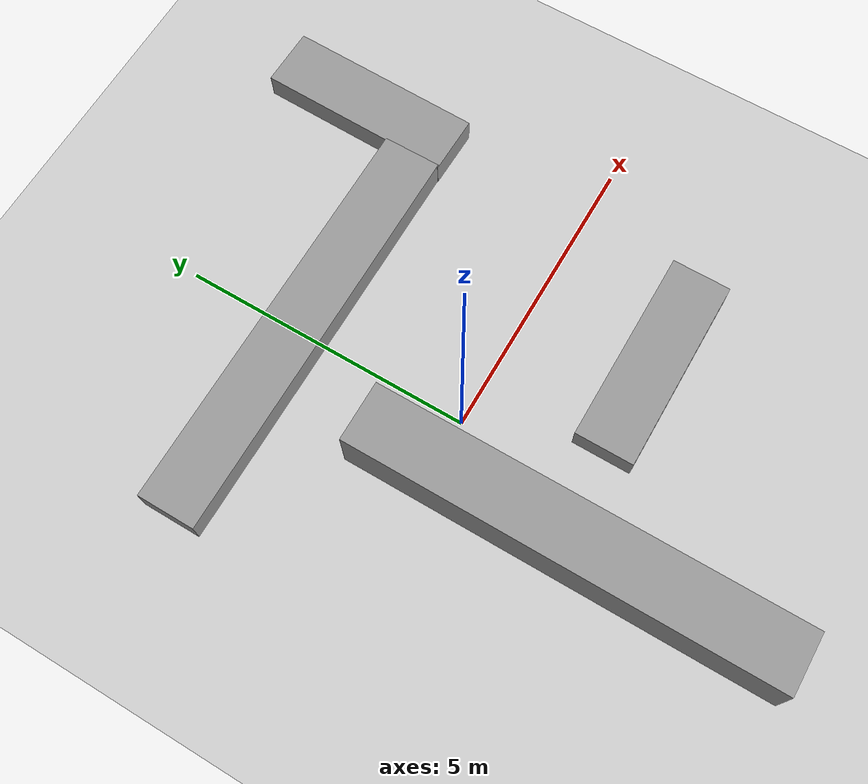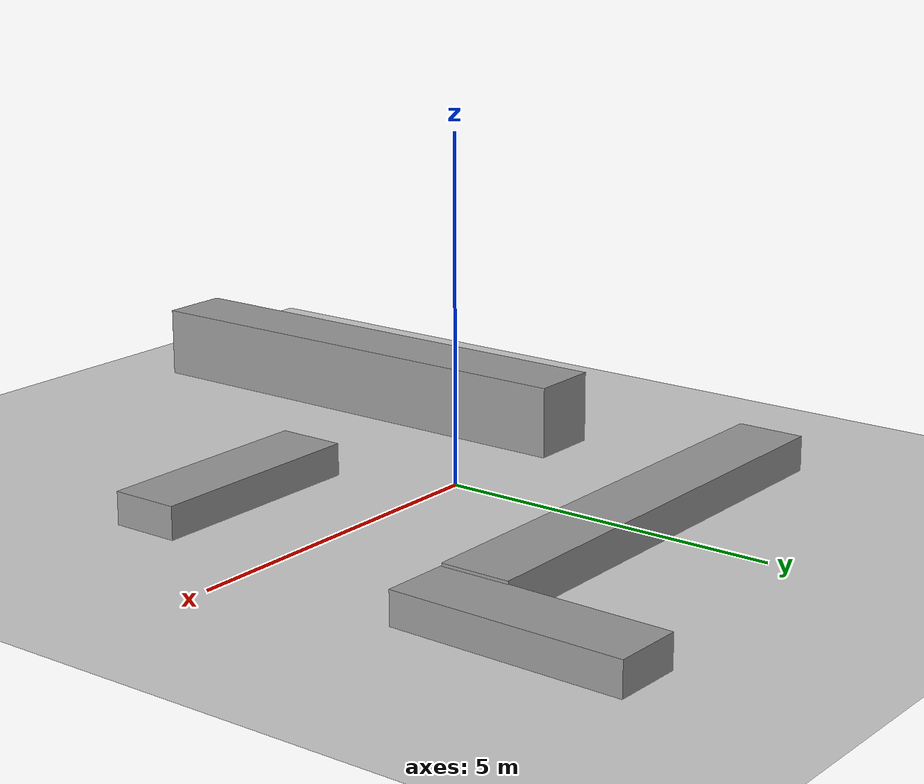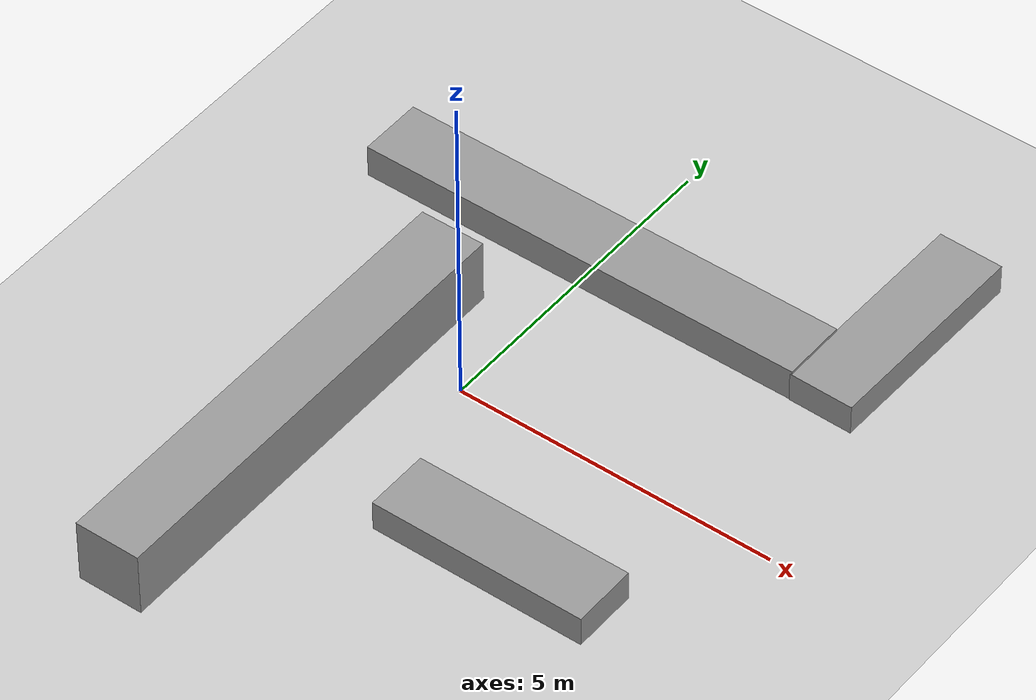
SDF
<sdf version="1.4">
 <world name="default">
  <model name="ground_plane">
   <static>1</static>
   <link name="link">
    <collision name="collision">
     <geometry>
      <plane><normal>0.000000 0.000000 1.000000</normal><size>100.000000 100.000000</size></plane>
     </geometry>
     <surface><friction><ode><mu>100.000000</mu><mu2>50.000000</mu2></ode></friction></surface>
    </collision>
    <visual name="visual">
     <cast_shadows>0</cast_shadows>
     <geometry>
      <plane><normal>0.000000 0.000000 1.000000</normal><size>100.000000 100.000000</size></plane>
     </geometry>
     <material>
      <script><uri>file://media/materials/scripts/gazebo.material</uri><name>Gazebo/Grey</name></script>
     </material>
    </visual>
    <velocity_decay><linear>0.000000</linear><angular>0.000000</angular></velocity_decay>
   </link>
  </model>
  <include><uri>model://sun</uri></include>
  <include><uri>model://obstacles</uri><pose>0 3 0 0 0 0</pose></include>
 </world>
</sdf>

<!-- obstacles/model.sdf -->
<sdf version='1.6'>
  <model name='obstacles'>
    <link name='link'>
      <inertial>
        <mass>7.0538</mass>
        <inertia>
          <ixx>1.17563</ixx>
          <ixy>0</ixy>
          <ixz>0</ixz>
          <iyy>29.8353</iyy>
          <iyz>0</iyz>
          <izz>29.8353</izz>
        </inertia>
        <pose frame=''>0 0 0 0 -0 0</pose>
      </inertial>
      <self_collide>0</self_collide>
      <enable_wind>0</enable_wind>
      <kinematic>0</kinematic>
      <pose frame=''>0 0 0 0 -0 0</pose>
      <gravity>1</gravity>
      <visual name='visual'>
        <geometry>
          <box>
            <size>7.05381 1 1</size>
          </box>
        </geometry>
        <material>
          <script>
            <name>Gazebo/Grey</name>
            <uri>file://media/materials/scripts/gazebo.material</uri>
          </script>
          <shader type='pixel'>
            <normal_map>__default__</normal_map>
          </shader>
        </material>
        <pose frame=''>-0 0 0 0 -0 0</pose>
        <transparency>0</transparency>
        <cast_shadows>1</cast_shadows>
      </visual>
      <collision name='collision'>
        <laser_retro>0</laser_retro>
        <max_contacts>10</max_contacts>
        <pose frame=''>0 0 0 0 -0 0</pose>
        <geometry>
          <box>
            <size>7.05381 1 1</size>
          </box>
        </geometry>
        <surface>
          <friction>
            <ode>
              <mu>1</mu>
              <mu2>1</mu2>
              <fdir1>0 0 0</fdir1>
              <slip1>0</slip1>
              <slip2>0</slip2>
            </ode>
            <torsional>
              <coefficient>1</coefficient>
              <patch_radius>0</patch_radius>
              <surface_radius>0</surface_radius>
              <use_patch_radius>1</use_patch_radius>
              <ode>
                <slip>0</slip>
              </ode>
            </torsional>
          </friction>
          <bounce>
            <restitution_coefficient>0</restitution_coefficient>
            <threshold>1e+06</threshold>
          </bounce>
          <contact>
            <collide_without_contact>0</collide_without_contact>
            <collide_without_contact_bitmask>1</collide_without_contact_bitmask>
            <collide_bitmask>1</collide_bitmask>
            <ode>
              <soft_cfm>0</soft_cfm>
              <soft_erp>0.2</soft_erp>
              <kp>1e+13</kp>
              <kd>1</kd>
              <max_vel>0.01</max_vel>
              <min_depth>0</min_depth>
            </ode>
            <bullet>
              <split_impulse>1</split_impulse>
              <split_impulse_penetration_threshold>-0.01</split_impulse_penetration_threshold>
              <soft_cfm>0</soft_cfm>
              <soft_erp>0.2</soft_erp>
              <kp>1e+13</kp>
              <kd>1</kd>
            </bullet>
          </contact>
        </surface>
      </collision>
    </link>
    <link name='link_clone'>
      <inertial>
        <mass>7.0538</mass>
        <inertia>
          <ixx>1.17563</ixx>
          <ixy>0</ixy>
          <ixz>0</ixz>
          <iyy>29.8353</iyy>
          <iyz>0</iyz>
          <izz>29.8353</izz>
        </inertia>
        <pose frame=''>0 0 0 0 -0 0</pose>
      </inertial>
      <self_collide>0</self_collide>
      <enable_wind>0</enable_wind>
      <kinematic>0</kinematic>
      <pose frame=''>-0.995262 -5.37922 1 3.14159 -0 -1.56832</pose>
      <gravity>1</gravity>
      <visual name='visual'>
        <geometry>
          <box>
            <size>7.05381 1 1</size>
          </box>
        </geometry>
        <material>
          <script>
            <name>Gazebo/Grey</name>
            <uri>file://media/materials/scripts/gazebo.material</uri>
          </script>
          <shader type='pixel'>
            <normal_map>__default__</normal_map>
          </shader>
        </material>
        <pose frame=''>-0 0 0 0 -0 0</pose>
        <transparency>0</transparency>
        <cast_shadows>1</cast_shadows>
      </visual>
      <collision name='collision'>
        <laser_retro>0</laser_retro>
        <max_contacts>10</max_contacts>
        <pose frame=''>0 0 0 0 -0 0</pose>
        <geometry>
          <box>
            <size>7.05381 1 1</size>
          </box>
        </geometry>
        <surface>
          <friction>
            <ode>
              <mu>1</mu>
              <mu2>1</mu2>
              <fdir1>0 0 0</fdir1>
              <slip1>0</slip1>
              <slip2>0</slip2>
            </ode>
            <torsional>
              <coefficient>1</coefficient>
              <patch_radius>0</patch_radius>
              <surface_radius>0</surface_radius>
              <use_patch_radius>1</use_patch_radius>
              <ode>
                <slip>0</slip>
              </ode>
            </torsional>
          </friction>
          <bounce>
            <restitution_coefficient>0</restitution_coefficient>
            <threshold>1e+06</threshold>
          </bounce>
          <contact>
            <collide_without_contact>0</collide_without_contact>
            <collide_without_contact_bitmask>1</collide_without_contact_bitmask>
            <collide_bitmask>1</collide_bitmask>
            <ode>
              <soft_cfm>0</soft_cfm>
              <soft_erp>0.2</soft_erp>
              <kp>1e+13</kp>
              <kd>1</kd>
              <max_vel>0.01</max_vel>
              <min_depth>0</min_depth>
            </ode>
            <bullet>
              <split_impulse>1</split_impulse>
              <split_impulse_penetration_threshold>-0.01</split_impulse_penetration_threshold>
              <soft_cfm>0</soft_cfm>
              <soft_erp>0.2</soft_erp>
              <kp>1e+13</kp>
              <kd>1</kd>
            </bullet>
          </contact>
        </surface>
      </collision>
    </link>
    <link name='link_clone_0'>
      <inertial>
        <mass>3.06069</mass>
        <inertia>
          <ixx>0.469057</ixx>
          <ixy>0</ixy>
          <ixz>0</ixz>
          <iyy>3.06178</iyy>
          <iyz>0</iyz>
          <izz>3.10284</izz>
        </inertia>
        <pose frame=''>0 0 0 0 -0 0</pose>
      </inertial>
      <self_collide>0</self_collide>
      <enable_wind>0</enable_wind>
      <kinematic>0</kinematic>
      <pose frame=''>2.28301 -5.12046 -0 0 -0 0</pose>
      <gravity>1</gravity>
      <visual name='visual'>
        <geometry>
          <box>
            <size>3.34145 1 0.915983</size>
          </box>
        </geometry>
        <material>
          <script>
            <name>Gazebo/Grey</name>
            <uri>file://media/materials/scripts/gazebo.material</uri>
          </script>
          <shader type='pixel'>
            <normal_map>__default__</normal_map>
          </shader>
        </material>
        <pose frame=''>-0 0 0 0 -0 0</pose>
        <transparency>0</transparency>
        <cast_shadows>1</cast_shadows>
      </visual>
      <collision name='collision'>
        <laser_retro>0</laser_retro>
        <max_contacts>10</max_contacts>
        <pose frame=''>0 0 0 0 -0 0</pose>
        <geometry>
          <box>
            <size>3.34145 1 0.915983</size>
          </box>
        </geometry>
        <surface>
          <friction>
            <ode>
              <mu>1</mu>
              <mu2>1</mu2>
              <fdir1>0 0 0</fdir1>
              <slip1>0</slip1>
              <slip2>0</slip2>
            </ode>
            <torsional>
              <coefficient>1</coefficient>
              <patch_radius>0</patch_radius>
              <surface_radius>0</surface_radius>
              <use_patch_radius>1</use_patch_radius>
              <ode>
                <slip>0</slip>
              </ode>
            </torsional>
          </friction>
          <bounce>
            <restitution_coefficient>0</restitution_coefficient>
            <threshold>1e+06</threshold>
          </bounce>
          <contact>
            <collide_without_contact>0</collide_without_contact>
            <collide_without_contact_bitmask>1</collide_without_contact_bitmask>
            <collide_bitmask>1</collide_bitmask>
            <ode>
              <soft_cfm>0</soft_cfm>
              <soft_erp>0.2</soft_erp>
              <kp>1e+13</kp>
              <kd>1</kd>
              <max_vel>0.01</max_vel>
              <min_depth>0</min_depth>
            </ode>
            <bullet>
              <split_impulse>1</split_impulse>
              <split_impulse_penetration_threshold>-0.01</split_impulse_penetration_threshold>
              <soft_cfm>0</soft_cfm>
              <soft_erp>0.2</soft_erp>
              <kp>1e+13</kp>
              <kd>1</kd>
            </bullet>
          </contact>
        </surface>
      </collision>
    </link>
    <link name='link_clone_0_clone'>
      <inertial>
        <mass>3.06069</mass>
        <inertia>
          <ixx>0.469057</ixx>
          <ixy>0</ixy>
          <ixz>0</ixz>
          <iyy>3.06178</iyy>
          <iyz>0</iyz>
          <izz>3.10284</izz>
        </inertia>
        <pose frame=''>0 0 0 0 -0 0</pose>
      </inertial>
      <self_collide>0</self_collide>
      <enable_wind>0</enable_wind>
      <kinematic>0</kinematic>
      <pose frame=''>4.02785 1.15059 -0 0 -0 1.55139</pose>
      <gravity>1</gravity>
      <visual name='visual'>
        <geometry>
          <box>
            <size>3.34145 1 0.915983</size>
          </box>
        </geometry>
        <material>
          <script>
            <name>Gazebo/Grey</name>
            <uri>file://media/materials/scripts/gazebo.material</uri>
          </script>
          <shader type='pixel'>
            <normal_map>__default__</normal_map>
          </shader>
        </material>
        <pose frame=''>-0 0 0 0 -0 0</pose>
        <transparency>0</transparency>
        <cast_shadows>1</cast_shadows>
      </visual>
      <collision name='collision'>
        <laser_retro>0</laser_retro>
        <max_contacts>10</max_contacts>
        <pose frame=''>0 0 0 0 -0 0</pose>
        <geometry>
          <box>
            <size>3.34145 1 0.915983</size>
          </box>
        </geometry>
        <surface>
          <friction>
            <ode>
              <mu>1</mu>
              <mu2>1</mu2>
              <fdir1>0 0 0</fdir1>
              <slip1>0</slip1>
              <slip2>0</slip2>
            </ode>
            <torsional>
              <coefficient>1</coefficient>
              <patch_radius>0</patch_radius>
              <surface_radius>0</surface_radius>
              <use_patch_radius>1</use_patch_radius>
              <ode>
                <slip>0</slip>
              </ode>
            </torsional>
          </friction>
          <bounce>
            <restitution_coefficient>0</restitution_coefficient>
            <threshold>1e+06</threshold>
          </bounce>
          <contact>
            <collide_without_contact>0</collide_without_contact>
            <collide_without_contact_bitmask>1</collide_without_contact_bitmask>
            <collide_bitmask>1</collide_bitmask>
            <ode>
              <soft_cfm>0</soft_cfm>
              <soft_erp>0.2</soft_erp>
              <kp>1e+13</kp>
              <kd>1</kd>
              <max_vel>0.01</max_vel>
              <min_depth>0</min_depth>
            </ode>
            <bullet>
              <split_impulse>1</split_impulse>
              <split_impulse_penetration_threshold>-0.01</split_impulse_penetration_threshold>
              <soft_cfm>0</soft_cfm>
              <soft_erp>0.2</soft_erp>
              <kp>1e+13</kp>
              <kd>1</kd>
            </bullet>
          </contact>
        </surface>
      </collision>
    </link>
    <static>1</static>
    <allow_auto_disable>1</allow_auto_disable>
  </model>
</sdf>
